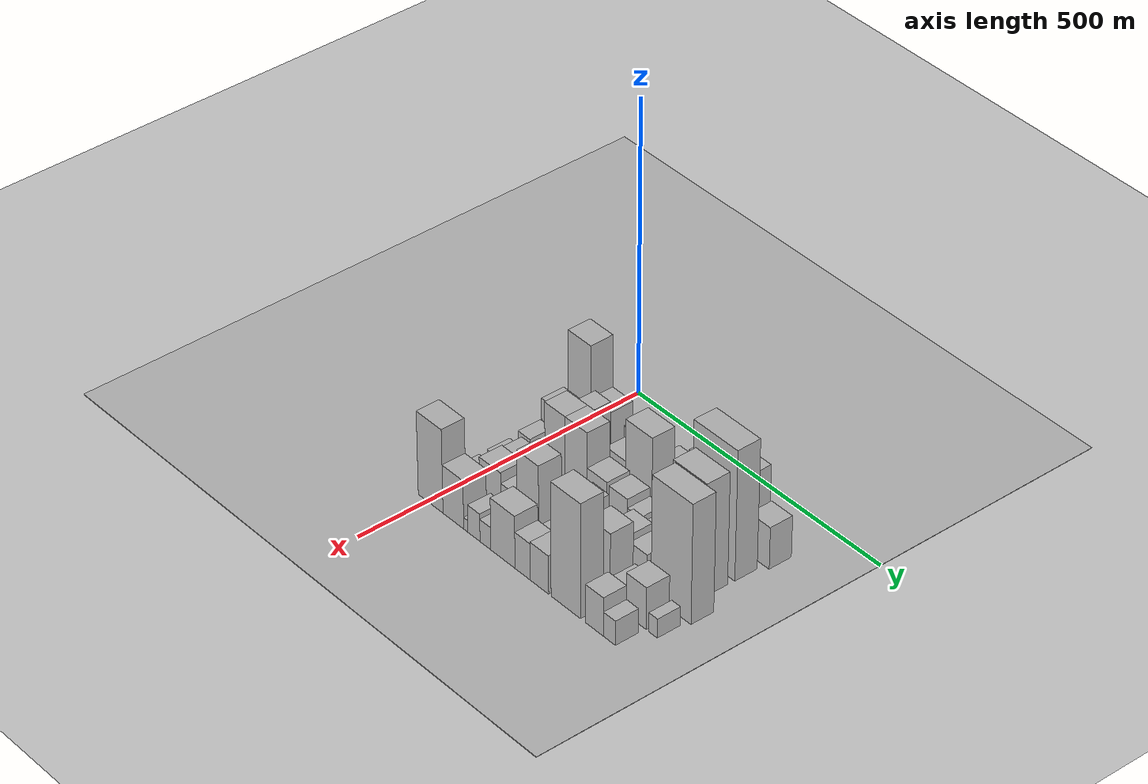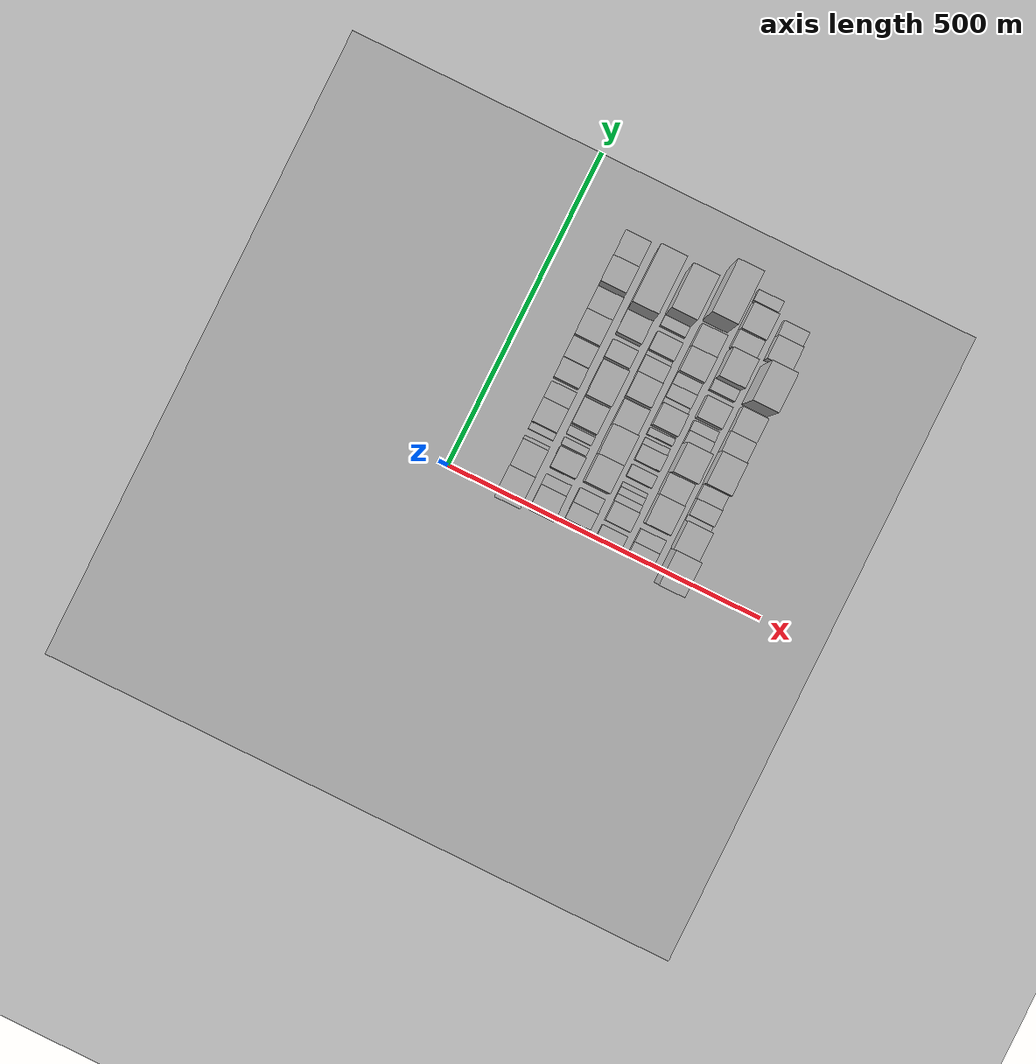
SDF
<sdf version="1.6">
 <world name="default">
  <include><name>ground_plane_1</name><uri>model://HANNAS_ground_plane</uri></include>
  <include>
   <name>ground_plane_2</name>
   <uri>model://HANNAS_ground_plane</uri>
   <pose>100 0 0  0 0 0</pose>
  </include>
  <model name="building_28">
   <static>1</static>
   <pose>100.0000 13.5725 0 0.000000 0.000000 0.000000</pose>
   <link name="link">
    <pose>0 0 81.00 0 0 0</pose>
    <collision name="collision"><geometry><box><size>40.0000 48.7074 162.0000</size></box></geometry></collision>
    <visual name="visual">
     <cast_shadows>0</cast_shadows>
     <geometry><box><size>40.0000 48.7074 162.0000</size></box></geometry>
     <material>
      <script>
       <uri>model://HANNAS_wall/materials/scripts</uri>
       <uri>model://HANNAS_wall/materials/textures</uri>
       <name>vrc/HANNAS_wall</name>
      </script>
     </material>
    </visual>
   </link>
  </model>
  <model name="building_29">
   <static>1</static>
   <pose>100.0000 59.4433 0 0.000000 0.000000 0.000000</pose>
   <link name="link">
    <pose>0 0 36.00 0 0 0</pose>
    <collision name="collision"><geometry><box><size>40.0000 43.0343 72.0000</size></box></geometry></collision>
    <visual name="visual">
     <cast_shadows>0</cast_shadows>
     <geometry><box><size>40.0000 43.0343 72.0000</size></box></geometry>
     <material>
      <script>
       <uri>model://HANNAS_wall/materials/scripts</uri>
       <uri>model://HANNAS_wall/materials/textures</uri>
       <name>vrc/HANNAS_wall</name>
      </script>
     </material>
    </visual>
   </link>
  </model>
  <model name="building_30">
   <static>1</static>
   <pose>100.0000 84.2464 0 0.000000 0.000000 0.000000</pose>
   <link name="link">
    <pose>0 0 7.50 0 0 0</pose>
    <collision name="collision"><geometry><box><size>40.0000 6.5718 15.0000</size></box></geometry></collision>
    <visual name="visual">
     <cast_shadows>0</cast_shadows>
     <geometry><box><size>40.0000 6.5718 15.0000</size></box></geometry>
     <material>
      <script>
       <uri>model://HANNAS_wall/materials/scripts</uri>
       <uri>model://HANNAS_wall/materials/textures</uri>
       <name>vrc/HANNAS_wall</name>
      </script>
     </material>
    </visual>
   </link>
  </model>
  <model name="building_31">
   <static>1</static>
   <pose>100.0000 103.0803 0 0.000000 0.000000 0.000000</pose>
   <link name="link">
    <pose>0 0 12.00 0 0 0</pose>
    <collision name="collision"><geometry><box><size>40.0000 11.0961 24.0000</size></box></geometry></collision>
    <visual name="visual">
     <cast_shadows>0</cast_shadows>
     <geometry><box><size>40.0000 11.0961 24.0000</size></box></geometry>
     <material>
      <script>
       <uri>model://HANNAS_wall/materials/scripts</uri>
       <uri>model://HANNAS_wall/materials/textures</uri>
       <name>vrc/HANNAS_wall</name>
      </script>
     </material>
    </visual>
   </link>
  </model>
  <model name="building_32">
   <static>1</static>
   <pose>100.0000 127.5367 0 0.000000 0.000000 0.000000</pose>
   <link name="link">
    <pose>0 0 33.00 0 0 0</pose>
    <collision name="collision"><geometry><box><size>40.0000 37.8167 66.0000</size></box></geometry></collision>
    <visual name="visual">
     <cast_shadows>0</cast_shadows>
     <geometry><box><size>40.0000 37.8167 66.0000</size></box></geometry>
     <material>
      <script>
       <uri>model://HANNAS_wall/materials/scripts</uri>
       <uri>model://HANNAS_wall/materials/textures</uri>
       <name>vrc/HANNAS_wall</name>
      </script>
     </material>
    </visual>
   </link>
  </model>
  <model name="building_33">
   <static>1</static>
   <pose>100.0000 159.8095 0 0.000000 0.000000 0.000000</pose>
   <link name="link">
    <pose>0 0 22.50 0 0 0</pose>
    <collision name="collision"><geometry><box><size>40.0000 26.7289 45.0000</size></box></geometry></collision>
    <visual name="visual">
     <cast_shadows>0</cast_shadows>
     <geometry><box><size>40.0000 26.7289 45.0000</size></box></geometry>
     <material>
      <script>
       <uri>model://HANNAS_wall/materials/scripts</uri>
       <uri>model://HANNAS_wall/materials/textures</uri>
       <name>vrc/HANNAS_wall</name>
      </script>
     </material>
    </visual>
   </link>
  </model>
  <model name="building_34">
   <static>1</static>
   <pose>100.0000 195.0250 0 0.000000 0.000000 0.000000</pose>
   <link name="link">
    <pose>0 0 27.00 0 0 0</pose>
    <collision name="collision"><geometry><box><size>40.0000 31.7022 54.0000</size></box></geometry></collision>
    <visual name="visual">
     <cast_shadows>0</cast_shadows>
     <geometry><box><size>40.0000 31.7022 54.0000</size></box></geometry>
     <material>
      <script>
       <uri>model://HANNAS_wall/materials/scripts</uri>
       <uri>model://HANNAS_wall/materials/textures</uri>
       <name>vrc/HANNAS_wall</name>
      </script>
     </material>
    </visual>
   </link>
  </model>
  <model name="building_35">
   <static>1</static>
   <pose>100.0000 227.4179 0 0.000000 0.000000 0.000000</pose>
   <link name="link">
    <pose>0 0 31.50 0 0 0</pose>
    <collision name="collision"><geometry><box><size>40.0000 33.0837 63.0000</size></box></geometry></collision>
    <visual name="visual">
     <cast_shadows>0</cast_shadows>
     <geometry><box><size>40.0000 33.0837 63.0000</size></box></geometry>
     <material>
      <script>
       <uri>model://HANNAS_wall/materials/scripts</uri>
       <uri>model://HANNAS_wall/materials/textures</uri>
       <name>vrc/HANNAS_wall</name>
      </script>
     </material>
    </visual>
   </link>
  </model>
  <model name="building_36">
   <static>1</static>
   <pose>100.0000 263.9914 0 0.000000 0.000000 0.000000</pose>
   <link name="link">
    <pose>0 0 52.50 0 0 0</pose>
    <collision name="collision"><geometry><box><size>40.0000 40.0632 105.0000</size></box></geometry></collision>
    <visual name="visual">
     <cast_shadows>0</cast_shadows>
     <geometry><box><size>40.0000 40.0632 105.0000</size></box></geometry>
     <material>
      <script>
       <uri>model://HANNAS_wall/materials/scripts</uri>
       <uri>model://HANNAS_wall/materials/textures</uri>
       <name>vrc/HANNAS_wall</name>
      </script>
     </material>
    </visual>
   </link>
  </model>
  <model name="building_37">
   <static>1</static>
   <pose>100.0000 302.7851 0 0.000000 0.000000 0.000000</pose>
   <link name="link">
    <pose>0 0 37.50 0 0 0</pose>
    <collision name="collision"><geometry><box><size>40.0000 37.5243 75.0000</size></box></geometry></collision>
    <visual name="visual">
     <cast_shadows>0</cast_shadows>
     <geometry><box><size>40.0000 37.5243 75.0000</size></box></geometry>
     <material>
      <script>
       <uri>model://HANNAS_wall/materials/scripts</uri>
       <uri>model://HANNAS_wall/materials/textures</uri>
       <name>vrc/HANNAS_wall</name>
      </script>
     </material>
    </visual>
   </link>
  </model>
  <model name="building_38">
   <static>1</static>
   <pose>100.0000 344.7998 0 0.000000 0.000000 0.000000</pose>
   <link name="link">
    <pose>0 0 66.00 0 0 0</pose>
    <collision name="collision"><geometry><box><size>40.0000 40.5052 132.0000</size></box></geometry></collision>
    <visual name="visual">
     <cast_shadows>0</cast_shadows>
     <geometry><box><size>40.0000 40.5052 132.0000</size></box></geometry>
     <material>
      <script>
       <uri>model://HANNAS_wall/materials/scripts</uri>
       <uri>model://HANNAS_wall/materials/textures</uri>
       <name>vrc/HANNAS_wall</name>
      </script>
     </material>
    </visual>
   </link>
  </model>
  <model name="building_39">
   <static>1</static>
   <pose>100.0000 388.9732 0 0.000000 0.000000 0.000000</pose>
   <link name="link">
    <pose>0 0 36.00 0 0 0</pose>
    <collision name="collision"><geometry><box><size>40.0000 41.8415 72.0000</size></box></geometry></collision>
    <visual name="visual">
     <cast_shadows>0</cast_shadows>
     <geometry><box><size>40.0000 41.8415 72.0000</size></box></geometry>
     <material>
      <script>
       <uri>model://HANNAS_wall/materials/scripts</uri>
       <uri>model://HANNAS_wall/materials/textures</uri>
       <name>vrc/HANNAS_wall</name>
      </script>
     </material>
    </visual>
   </link>
  </model>
  <model name="building_78">
   <static>1</static>
   <pose>152.0000 13.9654 0 0.000000 0.000000 0.000000</pose>
   <link name="link">
    <pose>0 0 36.00 0 0 0</pose>
    <collision name="collision"><geometry><box><size>40.0000 40.2604 72.0000</size></box></geometry></collision>
    <visual name="visual">
     <cast_shadows>0</cast_shadows>
     <geometry><box><size>40.0000 40.2604 72.0000</size></box></geometry>
     <material>
      <script>
       <uri>model://HANNAS_wall/materials/scripts</uri>
       <uri>model://HANNAS_wall/materials/textures</uri>
       <name>vrc/HANNAS_wall</name>
      </script>
     </material>
    </visual>
   </link>
  </model>
  <model name="building_79">
   <static>1</static>
   <pose>152.0000 42.8440 0 0.000000 0.000000 0.000000</pose>
   <link name="link">
    <pose>0 0 15.00 0 0 0</pose>
    <collision name="collision"><geometry><box><size>40.0000 17.4968 30.0000</size></box></geometry></collision>
    <visual name="visual">
     <cast_shadows>0</cast_shadows>
     <geometry><box><size>40.0000 17.4968 30.0000</size></box></geometry>
     <material>
      <script>
       <uri>model://HANNAS_wall/materials/scripts</uri>
       <uri>model://HANNAS_wall/materials/textures</uri>
       <name>vrc/HANNAS_wall</name>
      </script>
     </material>
    </visual>
   </link>
  </model>
  <model name="building_80">
   <static>1</static>
   <pose>152.0000 78.0755 0 0.000000 0.000000 0.000000</pose>
   <link name="link">
    <pose>0 0 52.50 0 0 0</pose>
    <collision name="collision"><geometry><box><size>40.0000 32.9662 105.0000</size></box></geometry></collision>
    <visual name="visual">
     <cast_shadows>0</cast_shadows>
     <geometry><box><size>40.0000 32.9662 105.0000</size></box></geometry>
     <material>
      <script>
       <uri>model://HANNAS_wall/materials/scripts</uri>
       <uri>model://HANNAS_wall/materials/textures</uri>
       <name>vrc/HANNAS_wall</name>
      </script>
     </material>
    </visual>
   </link>
  </model>
  <model name="building_81">
   <static>1</static>
   <pose>152.0000 104.4418 0 0.000000 0.000000 0.000000</pose>
   <link name="link">
    <pose>0 0 12.00 0 0 0</pose>
    <collision name="collision"><geometry><box><size>40.0000 11.7664 24.0000</size></box></geometry></collision>
    <visual name="visual">
     <cast_shadows>0</cast_shadows>
     <geometry><box><size>40.0000 11.7664 24.0000</size></box></geometry>
     <material>
      <script>
       <uri>model://HANNAS_wall/materials/scripts</uri>
       <uri>model://HANNAS_wall/materials/textures</uri>
       <name>vrc/HANNAS_wall</name>
      </script>
     </material>
    </visual>
   </link>
  </model>
  <model name="building_82">
   <static>1</static>
   <pose>152.0000 122.0508 0 0.000000 0.000000 0.000000</pose>
   <link name="link">
    <pose>0 0 13.50 0 0 0</pose>
    <collision name="collision"><geometry><box><size>40.0000 13.4516 27.0000</size></box></geometry></collision>
    <visual name="visual">
     <cast_shadows>0</cast_shadows>
     <geometry><box><size>40.0000 13.4516 27.0000</size></box></geometry>
     <material>
      <script>
       <uri>model://HANNAS_wall/materials/scripts</uri>
       <uri>model://HANNAS_wall/materials/textures</uri>
       <name>vrc/HANNAS_wall</name>
      </script>
     </material>
    </visual>
   </link>
  </model>
  <model name="building_83">
   <static>1</static>
   <pose>152.0000 152.3259 0 0.000000 0.000000 0.000000</pose>
   <link name="link">
    <pose>0 0 34.50 0 0 0</pose>
    <collision name="collision"><geometry><box><size>40.0000 41.0985 69.0000</size></box></geometry></collision>
    <visual name="visual">
     <cast_shadows>0</cast_shadows>
     <geometry><box><size>40.0000 41.0985 69.0000</size></box></geometry>
     <material>
      <script>
       <uri>model://HANNAS_wall/materials/scripts</uri>
       <uri>model://HANNAS_wall/materials/textures</uri>
       <name>vrc/HANNAS_wall</name>
      </script>
     </material>
    </visual>
   </link>
  </model>
  <model name="building_84">
   <static>1</static>
   <pose>152.0000 200.6738 0 0.000000 0.000000 0.000000</pose>
   <link name="link">
    <pose>0 0 70.50 0 0 0</pose>
    <collision name="collision"><geometry><box><size>40.0000 55.5974 141.0000</size></box></geometry></collision>
    <visual name="visual">
     <cast_shadows>0</cast_shadows>
     <geometry><box><size>40.0000 55.5974 141.0000</size></box></geometry>
     <material>
      <script>
       <uri>model://HANNAS_wall/materials/scripts</uri>
       <uri>model://HANNAS_wall/materials/textures</uri>
       <name>vrc/HANNAS_wall</name>
      </script>
     </material>
    </visual>
   </link>
  </model>
  <model name="building_85">
   <static>1</static>
   <pose>152.0000 250.6123 0 0.000000 0.000000 0.000000</pose>
   <link name="link">
    <pose>0 0 27.00 0 0 0</pose>
    <collision name="collision"><geometry><box><size>40.0000 28.2796 54.0000</size></box></geometry></collision>
    <visual name="visual">
     <cast_shadows>0</cast_shadows>
     <geometry><box><size>40.0000 28.2796 54.0000</size></box></geometry>
     <material>
      <script>
       <uri>model://HANNAS_wall/materials/scripts</uri>
       <uri>model://HANNAS_wall/materials/textures</uri>
       <name>vrc/HANNAS_wall</name>
      </script>
     </material>
    </visual>
   </link>
  </model>
  <model name="building_86">
   <static>1</static>
   <pose>152.0000 292.9332 0 0.000000 0.000000 0.000000</pose>
   <link name="link">
    <pose>0 0 31.50 0 0 0</pose>
    <collision name="collision"><geometry><box><size>40.0000 36.3621 63.0000</size></box></geometry></collision>
    <visual name="visual">
     <cast_shadows>0</cast_shadows>
     <geometry><box><size>40.0000 36.3621 63.0000</size></box></geometry>
     <material>
      <script>
       <uri>model://HANNAS_wall/materials/scripts</uri>
       <uri>model://HANNAS_wall/materials/textures</uri>
       <name>vrc/HANNAS_wall</name>
      </script>
     </material>
    </visual>
   </link>
  </model>
  <model name="building_87">
   <static>1</static>
   <pose>152.0000 355.1175 0 0.000000 0.000000 0.000000</pose>
   <link name="link">
    <pose>0 0 111.00 0 0 0</pose>
    <collision name="collision"><geometry><box><size>40.0000 88.0067 222.0000</size></box></geometry></collision>
    <visual name="visual">
     <cast_shadows>0</cast_shadows>
     <geometry><box><size>40.0000 88.0067 222.0000</size></box></geometry>
     <material>
      <script>
       <uri>model://HANNAS_wall/materials/scripts</uri>
       <uri>model://HANNAS_wall/materials/textures</uri>
       <name>vrc/HANNAS_wall</name>
      </script>
     </material>
    </visual>
   </link>
  </model>
  <model name="building_124">
   <static>1</static>
   <pose>204.0000 18.9760 0 0.000000 0.000000 0.000000</pose>
   <link name="link">
    <pose>0 0 24.00 0 0 0</pose>
    <collision name="collision"><geometry><box><size>40.0000 25.8912 48.0000</size></box></geometry></collision>
    <visual name="visual">
     <cast_shadows>0</cast_shadows>
     <geometry><box><size>40.0000 25.8912 48.0000</size></box></geometry>
     <material>
      <script>
       <uri>model://HANNAS_wall/materials/scripts</uri>
       <uri>model://HANNAS_wall/materials/textures</uri>
       <name>vrc/HANNAS_wall</name>
      </script>
     </material>
    </visual>
   </link>
  </model>
  <model name="building_125">
   <static>1</static>
   <pose>204.0000 43.3802 0 0.000000 0.000000 0.000000</pose>
   <link name="link">
    <pose>0 0 19.50 0 0 0</pose>
    <collision name="collision"><geometry><box><size>40.0000 22.9172 39.0000</size></box></geometry></collision>
    <visual name="visual">
     <cast_shadows>0</cast_shadows>
     <geometry><box><size>40.0000 22.9172 39.0000</size></box></geometry>
     <material>
      <script>
       <uri>model://HANNAS_wall/materials/scripts</uri>
       <uri>model://HANNAS_wall/materials/textures</uri>
       <name>vrc/HANNAS_wall</name>
      </script>
     </material>
    </visual>
   </link>
  </model>
  <model name="building_126">
   <static>1</static>
   <pose>204.0000 85.6093 0 0.000000 0.000000 0.000000</pose>
   <link name="link">
    <pose>0 0 66.00 0 0 0</pose>
    <collision name="collision"><geometry><box><size>40.0000 43.5411 132.0000</size></box></geometry></collision>
    <visual name="visual">
     <cast_shadows>0</cast_shadows>
     <geometry><box><size>40.0000 43.5411 132.0000</size></box></geometry>
     <material>
      <script>
       <uri>model://HANNAS_wall/materials/scripts</uri>
       <uri>model://HANNAS_wall/materials/textures</uri>
       <name>vrc/HANNAS_wall</name>
      </script>
     </material>
    </visual>
   </link>
  </model>
  <model name="building_127">
   <static>1</static>
   <pose>204.0000 130.7917 0 0.000000 0.000000 0.000000</pose>
   <link name="link">
    <pose>0 0 66.00 0 0 0</pose>
    <collision name="collision"><geometry><box><size>40.0000 46.8236 132.0000</size></box></geometry></collision>
    <visual name="visual">
     <cast_shadows>0</cast_shadows>
     <geometry><box><size>40.0000 46.8236 132.0000</size></box></geometry>
     <material>
      <script>
       <uri>model://HANNAS_wall/materials/scripts</uri>
       <uri>model://HANNAS_wall/materials/textures</uri>
       <name>vrc/HANNAS_wall</name>
      </script>
     </material>
    </visual>
   </link>
  </model>
  <model name="building_128">
   <static>1</static>
   <pose>204.0000 174.9381 0 0.000000 0.000000 0.000000</pose>
   <link name="link">
    <pose>0 0 36.00 0 0 0</pose>
    <collision name="collision"><geometry><box><size>40.0000 41.4693 72.0000</size></box></geometry></collision>
    <visual name="visual">
     <cast_shadows>0</cast_shadows>
     <geometry><box><size>40.0000 41.4693 72.0000</size></box></geometry>
     <material>
      <script>
       <uri>model://HANNAS_wall/materials/scripts</uri>
       <uri>model://HANNAS_wall/materials/textures</uri>
       <name>vrc/HANNAS_wall</name>
      </script>
     </material>
    </visual>
   </link>
  </model>
  <model name="building_129">
   <static>1</static>
   <pose>204.0000 218.9624 0 0.000000 0.000000 0.000000</pose>
   <link name="link">
    <pose>0 0 34.50 0 0 0</pose>
    <collision name="collision"><geometry><box><size>40.0000 38.5792 69.0000</size></box></geometry></collision>
    <visual name="visual">
     <cast_shadows>0</cast_shadows>
     <geometry><box><size>40.0000 38.5792 69.0000</size></box></geometry>
     <material>
      <script>
       <uri>model://HANNAS_wall/materials/scripts</uri>
       <uri>model://HANNAS_wall/materials/textures</uri>
       <name>vrc/HANNAS_wall</name>
      </script>
     </material>
    </visual>
   </link>
  </model>
  <model name="building_130">
   <static>1</static>
   <pose>204.0000 251.7730 0 0.000000 0.000000 0.000000</pose>
   <link name="link">
    <pose>0 0 27.00 0 0 0</pose>
    <collision name="collision"><geometry><box><size>40.0000 27.0419 54.0000</size></box></geometry></collision>
    <visual name="visual">
     <cast_shadows>0</cast_shadows>
     <geometry><box><size>40.0000 27.0419 54.0000</size></box></geometry>
     <material>
      <script>
       <uri>model://HANNAS_wall/materials/scripts</uri>
       <uri>model://HANNAS_wall/materials/textures</uri>
       <name>vrc/HANNAS_wall</name>
      </script>
     </material>
    </visual>
   </link>
  </model>
  <model name="building_131">
   <static>1</static>
   <pose>204.0000 269.7347 0 0.000000 0.000000 0.000000</pose>
   <link name="link">
    <pose>0 0 9.00 0 0 0</pose>
    <collision name="collision"><geometry><box><size>40.0000 8.8816 18.0000</size></box></geometry></collision>
    <visual name="visual">
     <cast_shadows>0</cast_shadows>
     <geometry><box><size>40.0000 8.8816 18.0000</size></box></geometry>
     <material>
      <script>
       <uri>model://HANNAS_wall/materials/scripts</uri>
       <uri>model://HANNAS_wall/materials/textures</uri>
       <name>vrc/HANNAS_wall</name>
      </script>
     </material>
    </visual>
   </link>
  </model>
  <model name="building_132">
   <static>1</static>
   <pose>204.0000 288.6306 0 0.000000 0.000000 0.000000</pose>
   <link name="link">
    <pose>0 0 27.00 0 0 0</pose>
    <collision name="collision"><geometry><box><size>40.0000 28.9103 54.0000</size></box></geometry></collision>
    <visual name="visual">
     <cast_shadows>0</cast_shadows>
     <geometry><box><size>40.0000 28.9103 54.0000</size></box></geometry>
     <material>
      <script>
       <uri>model://HANNAS_wall/materials/scripts</uri>
       <uri>model://HANNAS_wall/materials/textures</uri>
       <name>vrc/HANNAS_wall</name>
      </script>
     </material>
    </visual>
   </link>
  </model>
  <model name="building_133">
   <static>1</static>
   <pose>204.0000 321.4136 0 0.000000 0.000000 0.000000</pose>
   <link name="link">
    <pose>0 0 16.50 0 0 0</pose>
    <collision name="collision"><geometry><box><size>40.0000 16.6556 33.0000</size></box></geometry></collision>
    <visual name="visual">
     <cast_shadows>0</cast_shadows>
     <geometry><box><size>40.0000 16.6556 33.0000</size></box></geometry>
     <material>
      <script>
       <uri>model://HANNAS_wall/materials/scripts</uri>
       <uri>model://HANNAS_wall/materials/textures</uri>
       <name>vrc/HANNAS_wall</name>
      </script>
     </material>
    </visual>
   </link>
  </model>
  <model name="building_134">
   <static>1</static>
   <pose>204.0000 363.9510 0 0.000000 0.000000 0.000000</pose>
   <link name="link">
    <pose>0 0 96.00 0 0 0</pose>
    <collision name="collision"><geometry><box><size>40.0000 68.4193 192.0000</size></box></geometry></collision>
    <visual name="visual">
     <cast_shadows>0</cast_shadows>
     <geometry><box><size>40.0000 68.4193 192.0000</size></box></geometry>
     <material>
      <script>
       <uri>model://HANNAS_wall/materials/scripts</uri>
       <uri>model://HANNAS_wall/materials/textures</uri>
       <name>vrc/HANNAS_wall</name>
      </script>
     </material>
    </visual>
   </link>
  </model>
  <model name="building_168">
   <static>1</static>
   <pose>256.0000 11.9326 0 0.000000 0.000000 0.000000</pose>
   <link name="link">
    <pose>0 0 19.50 0 0 0</pose>
    <collision name="collision"><geometry><box><size>40.0000 19.5654 39.0000</size></box></geometry></collision>
    <visual name="visual">
     <cast_shadows>0</cast_shadows>
     <geometry><box><size>40.0000 19.5654 39.0000</size></box></geometry>
     <material>
      <script>
       <uri>model://HANNAS_wall/materials/scripts</uri>
       <uri>model://HANNAS_wall/materials/textures</uri>
       <name>vrc/HANNAS_wall</name>
      </script>
     </material>
    </visual>
   </link>
  </model>
  <model name="building_169">
   <static>1</static>
   <pose>256.0000 44.1017 0 0.000000 0.000000 0.000000</pose>
   <link name="link">
    <pose>0 0 28.50 0 0 0</pose>
    <collision name="collision"><geometry><box><size>40.0000 30.7726 57.0000</size></box></geometry></collision>
    <visual name="visual">
     <cast_shadows>0</cast_shadows>
     <geometry><box><size>40.0000 30.7726 57.0000</size></box></geometry>
     <material>
      <script>
       <uri>model://HANNAS_wall/materials/scripts</uri>
       <uri>model://HANNAS_wall/materials/textures</uri>
       <name>vrc/HANNAS_wall</name>
      </script>
     </material>
    </visual>
   </link>
  </model>
  <model name="building_170">
   <static>1</static>
   <pose>256.0000 65.2914 0 0.000000 0.000000 0.000000</pose>
   <link name="link">
    <pose>0 0 13.50 0 0 0</pose>
    <collision name="collision"><geometry><box><size>40.0000 11.6067 27.0000</size></box></geometry></collision>
    <visual name="visual">
     <cast_shadows>0</cast_shadows>
     <geometry><box><size>40.0000 11.6067 27.0000</size></box></geometry>
     <material>
      <script>
       <uri>model://HANNAS_wall/materials/scripts</uri>
       <uri>model://HANNAS_wall/materials/textures</uri>
       <name>vrc/HANNAS_wall</name>
      </script>
     </material>
    </visual>
   </link>
  </model>
  <model name="building_171">
   <static>1</static>
   <pose>256.0000 76.7334 0 0.000000 0.000000 0.000000</pose>
   <link name="link">
    <pose>0 0 13.50 0 0 0</pose>
    <collision name="collision"><geometry><box><size>40.0000 11.2773 27.0000</size></box></geometry></collision>
    <visual name="visual">
     <cast_shadows>0</cast_shadows>
     <geometry><box><size>40.0000 11.2773 27.0000</size></box></geometry>
     <material>
      <script>
       <uri>model://HANNAS_wall/materials/scripts</uri>
       <uri>model://HANNAS_wall/materials/textures</uri>
       <name>vrc/HANNAS_wall</name>
      </script>
     </material>
    </visual>
   </link>
  </model>
  <model name="building_172">
   <static>1</static>
   <pose>256.0000 86.0258 0 0.000000 0.000000 0.000000</pose>
   <link name="link">
    <pose>0 0 7.50 0 0 0</pose>
    <collision name="collision"><geometry><box><size>40.0000 7.3075 15.0000</size></box></geometry></collision>
    <visual name="visual">
     <cast_shadows>0</cast_shadows>
     <geometry><box><size>40.0000 7.3075 15.0000</size></box></geometry>
     <material>
      <script>
       <uri>model://HANNAS_wall/materials/scripts</uri>
       <uri>model://HANNAS_wall/materials/textures</uri>
       <name>vrc/HANNAS_wall</name>
      </script>
     </material>
    </visual>
   </link>
  </model>
  <model name="building_173">
   <static>1</static>
   <pose>256.0000 108.2921 0 0.000000 0.000000 0.000000</pose>
   <link name="link">
    <pose>0 0 16.50 0 0 0</pose>
    <collision name="collision"><geometry><box><size>40.0000 19.2252 33.0000</size></box></geometry></collision>
    <visual name="visual">
     <cast_shadows>0</cast_shadows>
     <geometry><box><size>40.0000 19.2252 33.0000</size></box></geometry>
     <material>
      <script>
       <uri>model://HANNAS_wall/materials/scripts</uri>
       <uri>model://HANNAS_wall/materials/textures</uri>
       <name>vrc/HANNAS_wall</name>
      </script>
     </material>
    </visual>
   </link>
  </model>
  <model name="building_174">
   <static>1</static>
   <pose>256.0000 137.4193 0 0.000000 0.000000 0.000000</pose>
   <link name="link">
    <pose>0 0 22.50 0 0 0</pose>
    <collision name="collision"><geometry><box><size>40.0000 25.0292 45.0000</size></box></geometry></collision>
    <visual name="visual">
     <cast_shadows>0</cast_shadows>
     <geometry><box><size>40.0000 25.0292 45.0000</size></box></geometry>
     <material>
      <script>
       <uri>model://HANNAS_wall/materials/scripts</uri>
       <uri>model://HANNAS_wall/materials/textures</uri>
       <name>vrc/HANNAS_wall</name>
      </script>
     </material>
    </visual>
   </link>
  </model>
  <model name="building_175">
   <static>1</static>
   <pose>256.0000 155.3795 0 0.000000 0.000000 0.000000</pose>
   <link name="link">
    <pose>0 0 12.00 0 0 0</pose>
    <collision name="collision"><geometry><box><size>40.0000 10.8911 24.0000</size></box></geometry></collision>
    <visual name="visual">
     <cast_shadows>0</cast_shadows>
     <geometry><box><size>40.0000 10.8911 24.0000</size></box></geometry>
     <material>
      <script>
       <uri>model://HANNAS_wall/materials/scripts</uri>
       <uri>model://HANNAS_wall/materials/textures</uri>
       <name>vrc/HANNAS_wall</name>
      </script>
     </material>
    </visual>
   </link>
  </model>
  <model name="building_176">
   <static>1</static>
   <pose>256.0000 171.3740 0 0.000000 0.000000 0.000000</pose>
   <link name="link">
    <pose>0 0 13.50 0 0 0</pose>
    <collision name="collision"><geometry><box><size>40.0000 11.0980 27.0000</size></box></geometry></collision>
    <visual name="visual">
     <cast_shadows>0</cast_shadows>
     <geometry><box><size>40.0000 11.0980 27.0000</size></box></geometry>
     <material>
      <script>
       <uri>model://HANNAS_wall/materials/scripts</uri>
       <uri>model://HANNAS_wall/materials/textures</uri>
       <name>vrc/HANNAS_wall</name>
      </script>
     </material>
    </visual>
   </link>
  </model>
  <model name="building_177">
   <static>1</static>
   <pose>256.0000 197.2609 0 0.000000 0.000000 0.000000</pose>
   <link name="link">
    <pose>0 0 34.50 0 0 0</pose>
    <collision name="collision"><geometry><box><size>40.0000 34.6759 69.0000</size></box></geometry></collision>
    <visual name="visual">
     <cast_shadows>0</cast_shadows>
     <geometry><box><size>40.0000 34.6759 69.0000</size></box></geometry>
     <material>
      <script>
       <uri>model://HANNAS_wall/materials/scripts</uri>
       <uri>model://HANNAS_wall/materials/textures</uri>
       <name>vrc/HANNAS_wall</name>
      </script>
     </material>
    </visual>
   </link>
  </model>
  <model name="building_178">
   <static>1</static>
   <pose>256.0000 219.7130 0 0.000000 0.000000 0.000000</pose>
   <link name="link">
    <pose>0 0 12.00 0 0 0</pose>
    <collision name="collision"><geometry><box><size>40.0000 10.2283 24.0000</size></box></geometry></collision>
    <visual name="visual">
     <cast_shadows>0</cast_shadows>
     <geometry><box><size>40.0000 10.2283 24.0000</size></box></geometry>
     <material>
      <script>
       <uri>model://HANNAS_wall/materials/scripts</uri>
       <uri>model://HANNAS_wall/materials/textures</uri>
       <name>vrc/HANNAS_wall</name>
      </script>
     </material>
    </visual>
   </link>
  </model>
  <model name="building_179">
   <static>1</static>
   <pose>256.0000 235.4978 0 0.000000 0.000000 0.000000</pose>
   <link name="link">
    <pose>0 0 19.50 0 0 0</pose>
    <collision name="collision"><geometry><box><size>40.0000 21.3411 39.0000</size></box></geometry></collision>
    <visual name="visual">
     <cast_shadows>0</cast_shadows>
     <geometry><box><size>40.0000 21.3411 39.0000</size></box></geometry>
     <material>
      <script>
       <uri>model://HANNAS_wall/materials/scripts</uri>
       <uri>model://HANNAS_wall/materials/textures</uri>
       <name>vrc/HANNAS_wall</name>
      </script>
     </material>
    </visual>
   </link>
  </model>
  <model name="building_180">
   <static>1</static>
   <pose>256.0000 255.3983 0 0.000000 0.000000 0.000000</pose>
   <link name="link">
    <pose>0 0 18.00 0 0 0</pose>
    <collision name="collision"><geometry><box><size>40.0000 18.4599 36.0000</size></box></geometry></collision>
    <visual name="visual">
     <cast_shadows>0</cast_shadows>
     <geometry><box><size>40.0000 18.4599 36.0000</size></box></geometry>
     <material>
      <script>
       <uri>model://HANNAS_wall/materials/scripts</uri>
       <uri>model://HANNAS_wall/materials/textures</uri>
       <name>vrc/HANNAS_wall</name>
      </script>
     </material>
    </visual>
   </link>
  </model>
  <model name="building_181">
   <static>1</static>
   <pose>256.0000 284.3922 0 0.000000 0.000000 0.000000</pose>
   <link name="link">
    <pose>0 0 37.50 0 0 0</pose>
    <collision name="collision"><geometry><box><size>40.0000 39.5279 75.0000</size></box></geometry></collision>
    <visual name="visual">
     <cast_shadows>0</cast_shadows>
     <geometry><box><size>40.0000 39.5279 75.0000</size></box></geometry>
     <material>
      <script>
       <uri>model://HANNAS_wall/materials/scripts</uri>
       <uri>model://HANNAS_wall/materials/textures</uri>
       <name>vrc/HANNAS_wall</name>
      </script>
     </material>
    </visual>
   </link>
  </model>
  <model name="building_182">
   <static>1</static>
   <pose>256.0000 322.0938 0 0.000000 0.000000 0.000000</pose>
   <link name="link">
    <pose>0 0 31.50 0 0 0</pose>
    <collision name="collision"><geometry><box><size>40.0000 35.8755 63.0000</size></box></geometry></collision>
    <visual name="visual">
     <cast_shadows>0</cast_shadows>
     <geometry><box><size>40.0000 35.8755 63.0000</size></box></geometry>
     <material>
      <script>
       <uri>model://HANNAS_wall/materials/scripts</uri>
       <uri>model://HANNAS_wall/materials/textures</uri>
       <name>vrc/HANNAS_wall</name>
      </script>
     </material>
    </visual>
   </link>
  </model>
  <model name="building_183">
   <static>1</static>
   <pose>256.0000 388.6539 0 0.000000 0.000000 0.000000</pose>
   <link name="link">
    <pose>0 0 102.00 0 0 0</pose>
    <collision name="collision"><geometry><box><size>40.0000 81.2446 204.0000</size></box></geometry></collision>
    <visual name="visual">
     <cast_shadows>0</cast_shadows>
     <geometry><box><size>40.0000 81.2446 204.0000</size></box></geometry>
     <material>
      <script>
       <uri>model://HANNAS_wall/materials/scripts</uri>
       <uri>model://HANNAS_wall/materials/textures</uri>
       <name>vrc/HANNAS_wall</name>
      </script>
     </material>
    </visual>
   </link>
  </model>
  <model name="building_222">
   <static>1</static>
   <pose>308.0000 9.7843 0 0.000000 0.000000 0.000000</pose>
   <link name="link">
    <pose>0 0 18.00 0 0 0</pose>
    <collision name="collision"><geometry><box><size>40.0000 19.7611 36.0000</size></box></geometry></collision>
    <visual name="visual">
     <cast_shadows>0</cast_shadows>
     <geometry><box><size>40.0000 19.7611 36.0000</size></box></geometry>
     <material>
      <script>
       <uri>model://HANNAS_wall/materials/scripts</uri>
       <uri>model://HANNAS_wall/materials/textures</uri>
       <name>vrc/HANNAS_wall</name>
      </script>
     </material>
    </visual>
   </link>
  </model>
  <model name="building_223">
   <static>1</static>
   <pose>308.0000 30.1795 0 0.000000 0.000000 0.000000</pose>
   <link name="link">
    <pose>0 0 18.00 0 0 0</pose>
    <collision name="collision"><geometry><box><size>40.0000 21.0292 36.0000</size></box></geometry></collision>
    <visual name="visual">
     <cast_shadows>0</cast_shadows>
     <geometry><box><size>40.0000 21.0292 36.0000</size></box></geometry>
     <material>
      <script>
       <uri>model://HANNAS_wall/materials/scripts</uri>
       <uri>model://HANNAS_wall/materials/textures</uri>
       <name>vrc/HANNAS_wall</name>
      </script>
     </material>
    </visual>
   </link>
  </model>
  <model name="building_224">
   <static>1</static>
   <pose>308.0000 72.6348 0 0.000000 0.000000 0.000000</pose>
   <link name="link">
    <pose>0 0 40.50 0 0 0</pose>
    <collision name="collision"><geometry><box><size>40.0000 45.8815 81.0000</size></box></geometry></collision>
    <visual name="visual">
     <cast_shadows>0</cast_shadows>
     <geometry><box><size>40.0000 45.8815 81.0000</size></box></geometry>
     <material>
      <script>
       <uri>model://HANNAS_wall/materials/scripts</uri>
       <uri>model://HANNAS_wall/materials/textures</uri>
       <name>vrc/HANNAS_wall</name>
      </script>
     </material>
    </visual>
   </link>
  </model>
  <model name="building_225">
   <static>1</static>
   <pose>308.0000 112.9074 0 0.000000 0.000000 0.000000</pose>
   <link name="link">
    <pose>0 0 31.50 0 0 0</pose>
    <collision name="collision"><geometry><box><size>40.0000 34.6638 63.0000</size></box></geometry></collision>
    <visual name="visual">
     <cast_shadows>0</cast_shadows>
     <geometry><box><size>40.0000 34.6638 63.0000</size></box></geometry>
     <material>
      <script>
       <uri>model://HANNAS_wall/materials/scripts</uri>
       <uri>model://HANNAS_wall/materials/textures</uri>
       <name>vrc/HANNAS_wall</name>
      </script>
     </material>
    </visual>
   </link>
  </model>
  <model name="building_226">
   <static>1</static>
   <pose>308.0000 153.2472 0 0.000000 0.000000 0.000000</pose>
   <link name="link">
    <pose>0 0 70.50 0 0 0</pose>
    <collision name="collision"><geometry><box><size>40.0000 46.0158 141.0000</size></box></geometry></collision>
    <visual name="visual">
     <cast_shadows>0</cast_shadows>
     <geometry><box><size>40.0000 46.0158 141.0000</size></box></geometry>
     <material>
      <script>
       <uri>model://HANNAS_wall/materials/scripts</uri>
       <uri>model://HANNAS_wall/materials/textures</uri>
       <name>vrc/HANNAS_wall</name>
      </script>
     </material>
    </visual>
   </link>
  </model>
  <model name="building_227">
   <static>1</static>
   <pose>308.0000 186.6073 0 0.000000 0.000000 0.000000</pose>
   <link name="link">
    <pose>0 0 19.50 0 0 0</pose>
    <collision name="collision"><geometry><box><size>40.0000 20.7044 39.0000</size></box></geometry></collision>
    <visual name="visual">
     <cast_shadows>0</cast_shadows>
     <geometry><box><size>40.0000 20.7044 39.0000</size></box></geometry>
     <material>
      <script>
       <uri>model://HANNAS_wall/materials/scripts</uri>
       <uri>model://HANNAS_wall/materials/textures</uri>
       <name>vrc/HANNAS_wall</name>
      </script>
     </material>
    </visual>
   </link>
  </model>
  <model name="building_228">
   <static>1</static>
   <pose>308.0000 205.2466 0 0.000000 0.000000 0.000000</pose>
   <link name="link">
    <pose>0 0 15.00 0 0 0</pose>
    <collision name="collision"><geometry><box><size>40.0000 16.5743 30.0000</size></box></geometry></collision>
    <visual name="visual">
     <cast_shadows>0</cast_shadows>
     <geometry><box><size>40.0000 16.5743 30.0000</size></box></geometry>
     <material>
      <script>
       <uri>model://HANNAS_wall/materials/scripts</uri>
       <uri>model://HANNAS_wall/materials/textures</uri>
       <name>vrc/HANNAS_wall</name>
      </script>
     </material>
    </visual>
   </link>
  </model>
  <model name="building_229">
   <static>1</static>
   <pose>308.0000 234.7748 0 0.000000 0.000000 0.000000</pose>
   <link name="link">
    <pose>0 0 30.00 0 0 0</pose>
    <collision name="collision"><geometry><box><size>40.0000 34.4822 60.0000</size></box></geometry></collision>
    <visual name="visual">
     <cast_shadows>0</cast_shadows>
     <geometry><box><size>40.0000 34.4822 60.0000</size></box></geometry>
     <material>
      <script>
       <uri>model://HANNAS_wall/materials/scripts</uri>
       <uri>model://HANNAS_wall/materials/textures</uri>
       <name>vrc/HANNAS_wall</name>
      </script>
     </material>
    </visual>
   </link>
  </model>
  <model name="building_230">
   <static>1</static>
   <pose>308.0000 270.9522 0 0.000000 0.000000 0.000000</pose>
   <link name="link">
    <pose>0 0 16.50 0 0 0</pose>
    <collision name="collision"><geometry><box><size>40.0000 17.8726 33.0000</size></box></geometry></collision>
    <visual name="visual">
     <cast_shadows>0</cast_shadows>
     <geometry><box><size>40.0000 17.8726 33.0000</size></box></geometry>
     <material>
      <script>
       <uri>model://HANNAS_wall/materials/scripts</uri>
       <uri>model://HANNAS_wall/materials/textures</uri>
       <name>vrc/HANNAS_wall</name>
      </script>
     </material>
    </visual>
   </link>
  </model>
  <model name="building_231">
   <static>1</static>
   <pose>308.0000 302.4777 0 0.000000 0.000000 0.000000</pose>
   <link name="link">
    <pose>0 0 58.50 0 0 0</pose>
    <collision name="collision"><geometry><box><size>40.0000 45.1785 117.0000</size></box></geometry></collision>
    <visual name="visual">
     <cast_shadows>0</cast_shadows>
     <geometry><box><size>40.0000 45.1785 117.0000</size></box></geometry>
     <material>
      <script>
       <uri>model://HANNAS_wall/materials/scripts</uri>
       <uri>model://HANNAS_wall/materials/textures</uri>
       <name>vrc/HANNAS_wall</name>
      </script>
     </material>
    </visual>
   </link>
  </model>
  <model name="building_232">
   <static>1</static>
   <pose>308.0000 343.3531 0 0.000000 0.000000 0.000000</pose>
   <link name="link">
    <pose>0 0 24.00 0 0 0</pose>
    <collision name="collision"><geometry><box><size>40.0000 28.5722 48.0000</size></box></geometry></collision>
    <visual name="visual">
     <cast_shadows>0</cast_shadows>
     <geometry><box><size>40.0000 28.5722 48.0000</size></box></geometry>
     <material>
      <script>
       <uri>model://HANNAS_wall/materials/scripts</uri>
       <uri>model://HANNAS_wall/materials/textures</uri>
       <name>vrc/HANNAS_wall</name>
      </script>
     </material>
    </visual>
   </link>
  </model>
  <model name="building_233">
   <static>1</static>
   <pose>308.0000 378.2924 0 0.000000 0.000000 0.000000</pose>
   <link name="link">
    <pose>0 0 36.00 0 0 0</pose>
    <collision name="collision"><geometry><box><size>40.0000 41.3063 72.0000</size></box></geometry></collision>
    <visual name="visual">
     <cast_shadows>0</cast_shadows>
     <geometry><box><size>40.0000 41.3063 72.0000</size></box></geometry>
     <material>
      <script>
       <uri>model://HANNAS_wall/materials/scripts</uri>
       <uri>model://HANNAS_wall/materials/textures</uri>
       <name>vrc/HANNAS_wall</name>
      </script>
     </material>
    </visual>
   </link>
  </model>
  <model name="building_234">
   <static>1</static>
   <pose>308.0000 412.7485 0 0.000000 0.000000 0.000000</pose>
   <link name="link">
    <pose>0 0 16.50 0 0 0</pose>
    <collision name="collision"><geometry><box><size>40.0000 17.6059 33.0000</size></box></geometry></collision>
    <visual name="visual">
     <cast_shadows>0</cast_shadows>
     <geometry><box><size>40.0000 17.6059 33.0000</size></box></geometry>
     <material>
      <script>
       <uri>model://HANNAS_wall/materials/scripts</uri>
       <uri>model://HANNAS_wall/materials/textures</uri>
       <name>vrc/HANNAS_wall</name>
      </script>
     </material>
    </visual>
   </link>
  </model>
  <model name="building_270">
   <static>1</static>
   <pose>360.0000 7.1682 0 0.000000 0.000000 0.000000</pose>
   <link name="link">
    <pose>0 0 72.00 0 0 0</pose>
    <collision name="collision"><geometry><box><size>40.0000 54.1895 144.0000</size></box></geometry></collision>
    <visual name="visual">
     <cast_shadows>0</cast_shadows>
     <geometry><box><size>40.0000 54.1895 144.0000</size></box></geometry>
     <material>
      <script>
       <uri>model://HANNAS_wall/materials/scripts</uri>
       <uri>model://HANNAS_wall/materials/textures</uri>
       <name>vrc/HANNAS_wall</name>
      </script>
     </material>
    </visual>
   </link>
  </model>
  <model name="building_271">
   <static>1</static>
   <pose>360.0000 56.7532 0 0.000000 0.000000 0.000000</pose>
   <link name="link">
    <pose>0 0 42.00 0 0 0</pose>
    <collision name="collision"><geometry><box><size>40.0000 44.9806 84.0000</size></box></geometry></collision>
    <visual name="visual">
     <cast_shadows>0</cast_shadows>
     <geometry><box><size>40.0000 44.9806 84.0000</size></box></geometry>
     <material>
      <script>
       <uri>model://HANNAS_wall/materials/scripts</uri>
       <uri>model://HANNAS_wall/materials/textures</uri>
       <name>vrc/HANNAS_wall</name>
      </script>
     </material>
    </visual>
   </link>
  </model>
  <model name="building_272">
   <static>1</static>
   <pose>360.0000 83.7908 0 0.000000 0.000000 0.000000</pose>
   <link name="link">
    <pose>0 0 10.50 0 0 0</pose>
    <collision name="collision"><geometry><box><size>40.0000 9.0946 21.0000</size></box></geometry></collision>
    <visual name="visual">
     <cast_shadows>0</cast_shadows>
     <geometry><box><size>40.0000 9.0946 21.0000</size></box></geometry>
     <material>
      <script>
       <uri>model://HANNAS_wall/materials/scripts</uri>
       <uri>model://HANNAS_wall/materials/textures</uri>
       <name>vrc/HANNAS_wall</name>
      </script>
     </material>
    </visual>
   </link>
  </model>
  <model name="building_273">
   <static>1</static>
   <pose>360.0000 101.3489 0 0.000000 0.000000 0.000000</pose>
   <link name="link">
    <pose>0 0 24.00 0 0 0</pose>
    <collision name="collision"><geometry><box><size>40.0000 26.0216 48.0000</size></box></geometry></collision>
    <visual name="visual">
     <cast_shadows>0</cast_shadows>
     <geometry><box><size>40.0000 26.0216 48.0000</size></box></geometry>
     <material>
      <script>
       <uri>model://HANNAS_wall/materials/scripts</uri>
       <uri>model://HANNAS_wall/materials/textures</uri>
       <name>vrc/HANNAS_wall</name>
      </script>
     </material>
    </visual>
   </link>
  </model>
  <model name="building_274">
   <static>1</static>
   <pose>360.0000 125.9129 0 0.000000 0.000000 0.000000</pose>
   <link name="link">
    <pose>0 0 19.50 0 0 0</pose>
    <collision name="collision"><geometry><box><size>40.0000 23.1063 39.0000</size></box></geometry></collision>
    <visual name="visual">
     <cast_shadows>0</cast_shadows>
     <geometry><box><size>40.0000 23.1063 39.0000</size></box></geometry>
     <material>
      <script>
       <uri>model://HANNAS_wall/materials/scripts</uri>
       <uri>model://HANNAS_wall/materials/textures</uri>
       <name>vrc/HANNAS_wall</name>
      </script>
     </material>
    </visual>
   </link>
  </model>
  <model name="building_275">
   <static>1</static>
   <pose>360.0000 163.1780 0 0.000000 0.000000 0.000000</pose>
   <link name="link">
    <pose>0 0 45.00 0 0 0</pose>
    <collision name="collision"><geometry><box><size>40.0000 51.4239 90.0000</size></box></geometry></collision>
    <visual name="visual">
     <cast_shadows>0</cast_shadows>
     <geometry><box><size>40.0000 51.4239 90.0000</size></box></geometry>
     <material>
      <script>
       <uri>model://HANNAS_wall/materials/scripts</uri>
       <uri>model://HANNAS_wall/materials/textures</uri>
       <name>vrc/HANNAS_wall</name>
      </script>
     </material>
    </visual>
   </link>
  </model>
  <model name="building_276">
   <static>1</static>
   <pose>360.0000 204.9773 0 0.000000 0.000000 0.000000</pose>
   <link name="link">
    <pose>0 0 31.50 0 0 0</pose>
    <collision name="collision"><geometry><box><size>40.0000 32.1746 63.0000</size></box></geometry></collision>
    <visual name="visual">
     <cast_shadows>0</cast_shadows>
     <geometry><box><size>40.0000 32.1746 63.0000</size></box></geometry>
     <material>
      <script>
       <uri>model://HANNAS_wall/materials/scripts</uri>
       <uri>model://HANNAS_wall/materials/textures</uri>
       <name>vrc/HANNAS_wall</name>
      </script>
     </material>
    </visual>
   </link>
  </model>
  <model name="building_277">
   <static>1</static>
   <pose>360.0000 240.3819 0 0.000000 0.000000 0.000000</pose>
   <link name="link">
    <pose>0 0 33.00 0 0 0</pose>
    <collision name="collision"><geometry><box><size>40.0000 38.6346 66.0000</size></box></geometry></collision>
    <visual name="visual">
     <cast_shadows>0</cast_shadows>
     <geometry><box><size>40.0000 38.6346 66.0000</size></box></geometry>
     <material>
      <script>
       <uri>model://HANNAS_wall/materials/scripts</uri>
       <uri>model://HANNAS_wall/materials/textures</uri>
       <name>vrc/HANNAS_wall</name>
      </script>
     </material>
    </visual>
   </link>
  </model>
  <model name="building_278">
   <static>1</static>
   <pose>360.0000 295.2570 0 0.000000 0.000000 0.000000</pose>
   <link name="link">
    <pose>0 0 97.50 0 0 0</pose>
    <collision name="collision"><geometry><box><size>40.0000 61.1156 195.0000</size></box></geometry></collision>
    <visual name="visual">
     <cast_shadows>0</cast_shadows>
     <geometry><box><size>40.0000 61.1156 195.0000</size></box></geometry>
     <material>
      <script>
       <uri>model://HANNAS_wall/materials/scripts</uri>
       <uri>model://HANNAS_wall/materials/textures</uri>
       <name>vrc/HANNAS_wall</name>
      </script>
     </material>
    </visual>
   </link>
  </model>
  <model name="building_279">
   <static>1</static>
   <pose>360.0000 354.2918 0 0.000000 0.000000 0.000000</pose>
   <link name="link">
    <pose>0 0 33.00 0 0 0</pose>
    <collision name="collision"><geometry><box><size>40.0000 36.9540 66.0000</size></box></geometry></collision>
    <visual name="visual">
     <cast_shadows>0</cast_shadows>
     <geometry><box><size>40.0000 36.9540 66.0000</size></box></geometry>
     <material>
      <script>
       <uri>model://HANNAS_wall/materials/scripts</uri>
       <uri>model://HANNAS_wall/materials/textures</uri>
       <name>vrc/HANNAS_wall</name>
      </script>
     </material>
    </visual>
   </link>
  </model>
  <model name="building_280">
   <static>1</static>
   <pose>360.0000 385.0605 0 0.000000 0.000000 0.000000</pose>
   <link name="link">
    <pose>0 0 21.00 0 0 0</pose>
    <collision name="collision"><geometry><box><size>40.0000 24.5834 42.0000</size></box></geometry></collision>
    <visual name="visual">
     <cast_shadows>0</cast_shadows>
     <geometry><box><size>40.0000 24.5834 42.0000</size></box></geometry>
     <material>
      <script>
       <uri>model://HANNAS_wall/materials/scripts</uri>
       <uri>model://HANNAS_wall/materials/textures</uri>
       <name>vrc/HANNAS_wall</name>
      </script>
     </material>
    </visual>
   </link>
  </model>
 </world>
</sdf>
